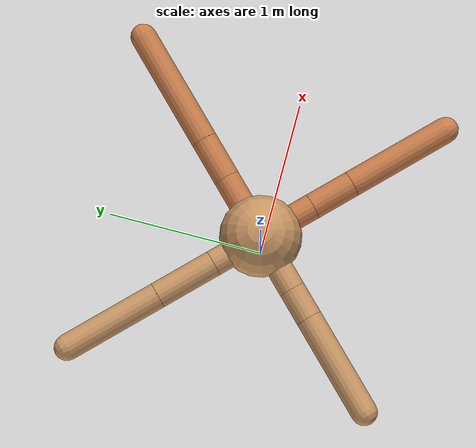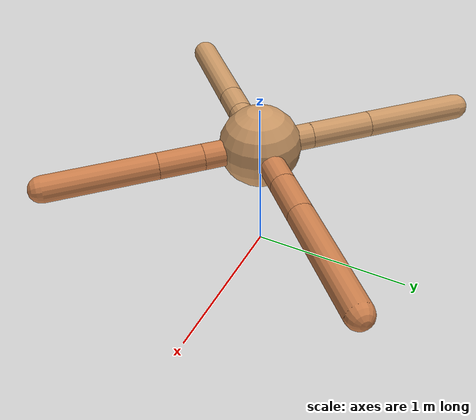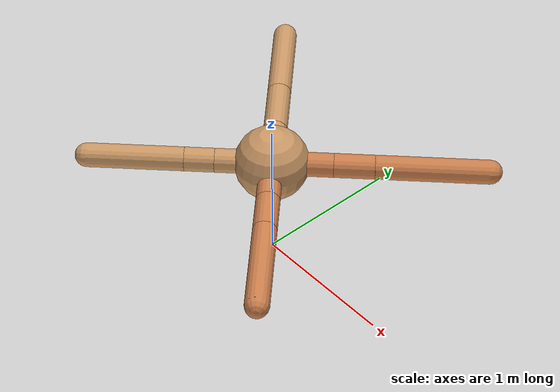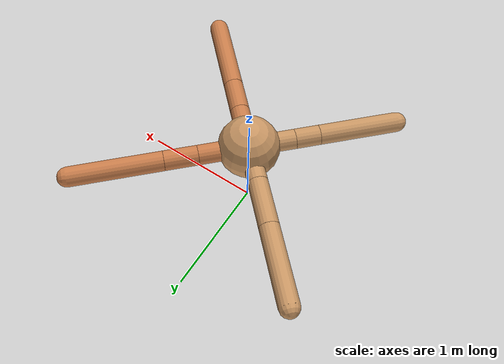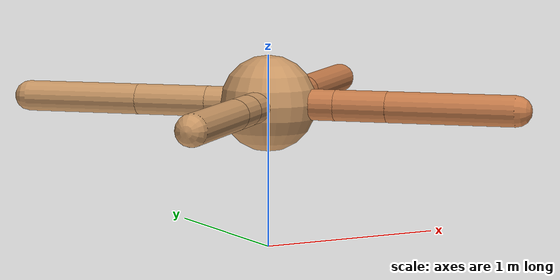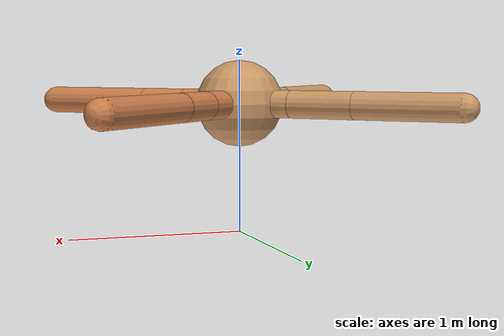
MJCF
<mujoco model="ant">
  <compiler angle="degree" coordinate="local" inertiafromgeom="true" />
  <option integrator="RK4" timestep="0.01" />
  <custom>
    <numeric data="0.0 0.0 0.55 1.0 0.0 0.0 0.0 0.0 1.0 0.0 -1.0 0.0 -1.0 0.0 1.0" name="init_qpos" />
  </custom>
  <default>
    <joint armature="1" damping="1" limited="true" />
    <geom conaffinity="0" condim="3" density="5.0" friction="1.5 0.1 0.1" margin="0.01" rgba="0.8 0.6 0.4 1" />
  </default>
  <worldbody>
    <body name="torso" pos="0 0 0.75">
      <geom name="torso_geom" pos="0 0 0" size="0.25" type="sphere" />

      <body name="front_left_leg" pos="0 0 0">
        <geom fromto="0.0 0.0 0.0 0.2871916332232937 0.2871916332232937 0.0" name="aux_1_geom" size="0.08" type="capsule" rgba=".8 .5 .3 1" />
        <body name="aux_1" pos="0.2871916332232937 0.2871916332232937 0.0">
          <joint axis="0 0 1" name="hip_1" pos="0.0 0.0 0.0" range="-40 40" type="hinge" />
          <geom fromto="0.0 0.0 0.0 0.1911164943658438 0.1911164943658438 0.0" name="left_leg_geom" size="0.08" type="capsule" rgba=".8 .5 .3 1" />
          <body pos="0.1911164943658438 0.1911164943658438 0.0" name="front_left_foot">
            <joint axis="-1 1 0" name="ankle_1" pos="0.0 0.0 0.0" range="30 100" type="hinge" />
            <geom fromto="0.0 0.0 0.0 0.5295231624042221 0.5295231624042221 0.0" name="left_ankle_geom" size="0.08" type="capsule" rgba=".8 .5 .3 1" />
          </body>
        </body>
      </body>
      <body name="front_right_leg" pos="0 0 0">
        <geom fromto="0.0 0.0 0.0 -0.23205746255855209 0.23205746255855209 0.0" name="aux_2_geom" size="0.08" type="capsule" />
        <body name="aux_2" pos="-0.23205746255855209 0.23205746255855209 0.0">
          <joint axis="0 0 1" name="hip_2" pos="0.0 0.0 0.0" range="-40 40" type="hinge" />
          <geom fromto="0.0 0.0 0.0 -0.27138814637828396 0.27138814637828396 0.0" name="right_leg_geom" size="0.08" type="capsule" />
          <body pos="-0.27138814637828396 0.27138814637828396 0.0" name="front_right_foot">
            <joint axis="1 1 0" name="ankle_2" pos="0.0 0.0 0.0" range="-100 -30" type="hinge" />
            <geom fromto="0.0 0.0 0.0 -0.4376641085497639 0.4376641085497639 0.0" name="right_ankle_geom" size="0.08" type="capsule" />
          </body>
        </body>
      </body>
      <body name="left_back_leg" pos="0 0 0">
        <geom fromto="0.0 0.0 0.0 -0.26439648418916656 -0.26439648418916656 0.0" name="aux_3_geom" size="0.08" type="capsule" />
        <body name="aux_3" pos="-0.26439648418916656 -0.26439648418916656 0.0">
          <joint axis="0 0 1" name="hip_3" pos="0.0 0.0 0.0" range="-40 40" type="hinge" />
          <geom fromto="0.0 0.0 0.0 -0.1412007427495678 -0.1412007427495678 0.0" name="back_leg_geom" size="0.08" type="capsule" />
          <body pos="-0.1412007427495678 -0.1412007427495678 0.0" name="left_back_foot">
            <joint axis="-1 1 0" name="ankle_3" pos="0.0 0.0 0.0" range="-100 -30" type="hinge" />
            <geom fromto="0.0 0.0 0.0 -0.45559172916575524 -0.45559172916575524 0.0" name="third_ankle_geom" size="0.08" type="capsule" />
          </body>
        </body>
      </body>
      <body name="right_back_leg" pos="0 0 0">
        <geom fromto="0.0 0.0 0.0 0.2538100246859083 -0.2538100246859083 0.0" name="aux_4_geom" size="0.08" type="capsule" rgba=".8 .5 .3 1" />
        <body name="aux_4" pos="0.2538100246859083 -0.2538100246859083 0.0">
          <joint axis="0 0 1" name="hip_4" pos="0.0 0.0 0.0" range="-40 40" type="hinge" />
          <geom fromto="0.0 0.0 0.0 0.19331831766802743 -0.19331831766802743 0.0" name="rightback_leg_geom" size="0.08" type="capsule" rgba=".8 .5 .3 1" />
          <body pos="0.19331831766802743 -0.19331831766802743 0.0" name="right_back_foot">
            <joint axis="1 1 0" name="ankle_4" pos="0.0 0.0 0.0" range="30 100" type="hinge" />
            <geom fromto="0.0 0.0 0.0 0.468321570643513 -0.468321570643513 0.0" name="fourth_ankle_geom" size="0.08" type="capsule" rgba=".8 .5 .3 1" />
          </body>
        </body>
      </body>
    </body>
  </worldbody>
  <actuator>
    <motor ctrllimited="true" ctrlrange="-1.0 1.0" joint="hip_4" gear="150" />
    <motor ctrllimited="true" ctrlrange="-1.0 1.0" joint="ankle_4" gear="150" />
    <motor ctrllimited="true" ctrlrange="-1.0 1.0" joint="hip_1" gear="150" />
    <motor ctrllimited="true" ctrlrange="-1.0 1.0" joint="ankle_1" gear="150" />
    <motor ctrllimited="true" ctrlrange="-1.0 1.0" joint="hip_2" gear="150" />
    <motor ctrllimited="true" ctrlrange="-1.0 1.0" joint="ankle_2" gear="150" />
    <motor ctrllimited="true" ctrlrange="-1.0 1.0" joint="hip_3" gear="150" />
    <motor ctrllimited="true" ctrlrange="-1.0 1.0" joint="ankle_3" gear="150" />
  </actuator>
</mujoco>
